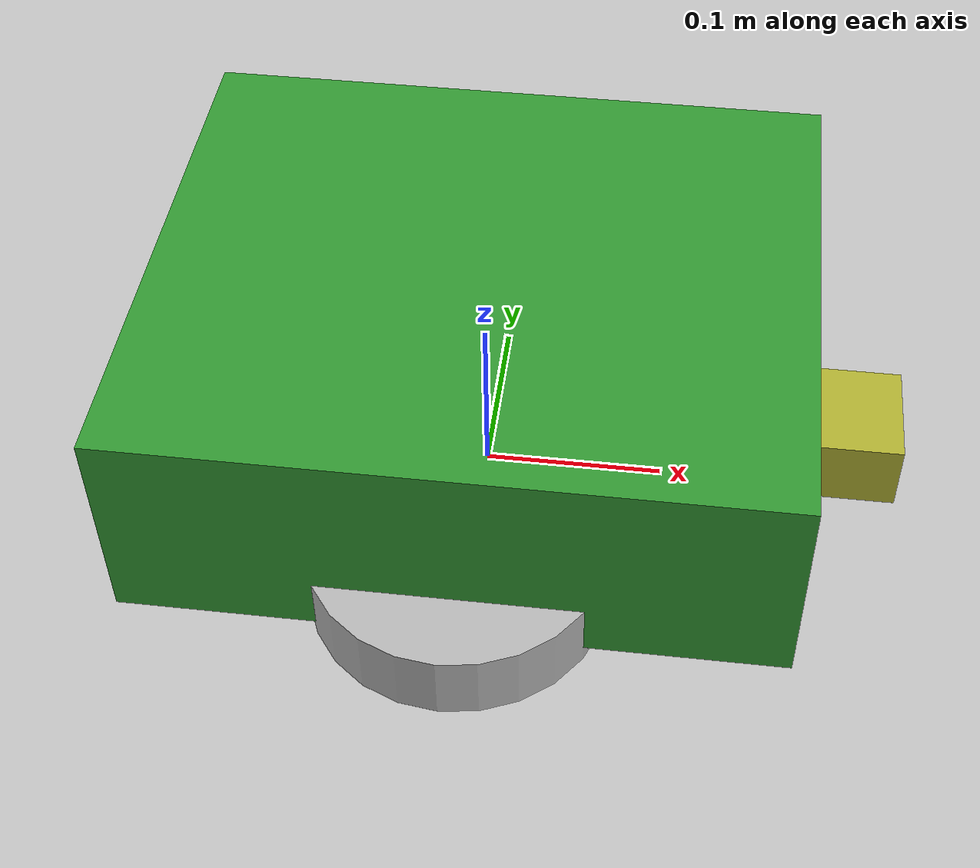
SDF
<?xml version="1.0" ?>
<sdf version="1.9">
  <model name="weedbot_tertill">
    <static>false</static>

    <!-- Base link (box) -->
    <link name="base_link">
      <pose>0 0 0.09 0 0 0</pose> <!-- base center Z = 0.09 m -->
      <inertial>
        <mass>6.0</mass>
        <inertia>
          <!-- approximated from a rectangular box (L x W x H = 0.35 x 0.30 x 0.12 m) -->
          <ixx>0.0522</ixx>
          <iyy>0.0684</iyy>
          <izz>0.1063</izz>
        </inertia>
      </inertial>

      <visual name="base_visual">
        <pose>0 0 0 0 0 0</pose>
        <geometry>
          <box>
            <size>0.35 0.30 0.12</size>
          </box>
        </geometry>
        <material>
          <ambient>0.2 0.6 0.2 1</ambient>
          <diffuse>0.2 0.6 0.2 1</diffuse>
        </material>
      </visual>

      <collision name="base_collision">
        <geometry>
          <box>
            <size>0.35 0.30 0.12</size>
          </box>
        </geometry>
      </collision>
    </link>

    <!-- Left wheel -->
    <link name="left_wheel">
      <!-- left wheel is offset -Y (robot forward = +X) -->
      <pose>0 -0.11 0.04 0 0 0</pose>
      <inertial>
        <mass>0.25</mass>
        <inertia>
          <ixx>0.0009</ixx>
          <iyy>0.0012</iyy>
          <izz>0.00064</izz>
        </inertia>
      </inertial>
      <visual name="left_wheel_visual">
        <pose>0 0 0 0 0 0</pose>
        <geometry>
          <cylinder>
            <radius>0.08</radius>
            <length>0.04</length>
          </cylinder>
        </geometry>
      </visual>
      <collision name="left_wheel_collision">
        <geometry>
          <cylinder>
            <radius>0.08</radius>
            <length>0.04</length>
          </cylinder>
        </geometry>
      </collision>
    </link>

    <!-- Right wheel -->
    <link name="right_wheel">
      <pose>0 0.11 0.04 0 0 0</pose>
      <inertial>
        <mass>0.25</mass>
        <inertia>
          <ixx>0.0009</ixx>
          <iyy>0.0012</iyy>
          <izz>0.00064</izz>
        </inertia>
      </inertial>
      <visual name="right_wheel_visual">
        <geometry>
          <cylinder>
            <radius>0.08</radius>
            <length>0.04</length>
          </cylinder>
        </geometry>
      </visual>
      <collision name="right_wheel_collision">
        <geometry>
          <cylinder>
            <radius>0.08</radius>
            <length>0.04</length>
          </cylinder>
        </geometry>
      </collision>
    </link>

    <!-- Wheel joints (revolute about Y axis) -->
    <joint name="left_wheel_joint" type="revolute">
      <parent>base_link</parent>
      <child>left_wheel</child>
      <pose>0 -0.11 0.04 0 0 0</pose>
      <axis>
        <xyz>0 1 0</xyz>
        <limit>
          <lower>-1000</lower>
          <upper>1000</upper>
        </limit>
      </axis>
    </joint>

    <joint name="right_wheel_joint" type="revolute">
      <parent>base_link</parent>
      <child>right_wheel</child>
      <pose>0 0.11 0.04 0 0 0</pose>
      <axis>
        <xyz>0 1 0</xyz>
        <limit>
          <lower>-1000</lower>
          <upper>1000</upper>
        </limit>
      </axis>
    </joint>

    <!-- Small trimmer tool (visual only) -->
    <link name="trimmer">
      <pose>0.15 0 0.045 0 0 0</pose>
      <visual name="trimmer_vis">
        <geometry>
          <box><size>0.16 0.06 0.04</size></box>
        </geometry>
        <material>
          <ambient>0.7 0.7 0.2 1</ambient>
        </material>
      </visual>
    </link>
    <joint name="trimmer_joint" type="fixed">
      <parent>base_link</parent>
      <child>trimmer</child>
    </joint>

    <!-- IMU sensor plugin (publishes /imu). Replace plugin name if your gazebo build differs. -->
    <plugin name="imu_plugin" filename="libgazebo_imu_sensor.so">
      <alwaysOn>1</alwaysOn>
      <updateRate>50</updateRate>
      <topic>/imu</topic>
      <gaussianNoise>0.0</gaussianNoise>
    </plugin>

    <!-- Simple contact bumpers (collision only) - users can add contact plugins if needed -->
    <link name="bumper_front">
      <pose>0.20 0 0.02 0 0 0</pose>
      <collision name="bumper_col">
        <geometry><box><size>0.10 0.28 0.04</size></box></geometry>
      </collision>
    </link>
    <joint name="bumper_joint" type="fixed">
      <parent>base_link</parent>
      <child>bumper_front</child>
    </joint>

    <!-- Diff-drive plugin for gz-sim (name of plugin may need to be adapted for your Gazebo/GZ build) -->
    <plugin name="diff_drive" filename="libgz-sim-diff-drive-system.so">
      <left_joint>left_wheel_joint</left_joint>
      <right_joint>right_wheel_joint</right_joint>

      <!-- physical parameters -->
      <wheel_separation>0.22</wheel_separation> <!-- center-to-center -->
      <wheel_radius>0.08</wheel_radius>

      <!-- ROS topics -->
      <topic>/cmd_vel</topic>
      <odom_topic>/odom</odom_topic>
      <publish_odom>true</publish_odom>
      <publish_tf>true</publish_tf>

      <!-- tune if needed -->
      <wheel_torque>5.0</wheel_torque>
      <enable_encoder>1</enable_encoder>
      <encoder_ticks_per_rev>2048</encoder_ticks_per_rev>
    </plugin>

    <!-- Allow small collisions with ground (keep model contact-enabled) -->
    <surface>
      <friction>
        <ode>
          <mu>1.0</mu>
          <mu2>1.0</mu2>
        </ode>
      </friction>
    </surface>

  </model>
</sdf>
